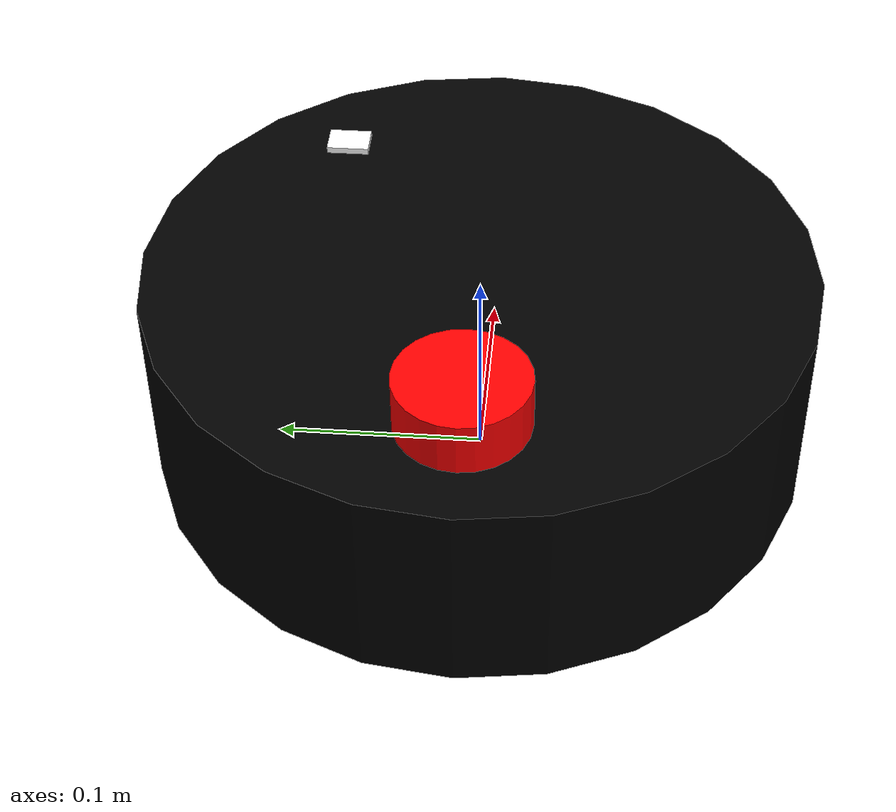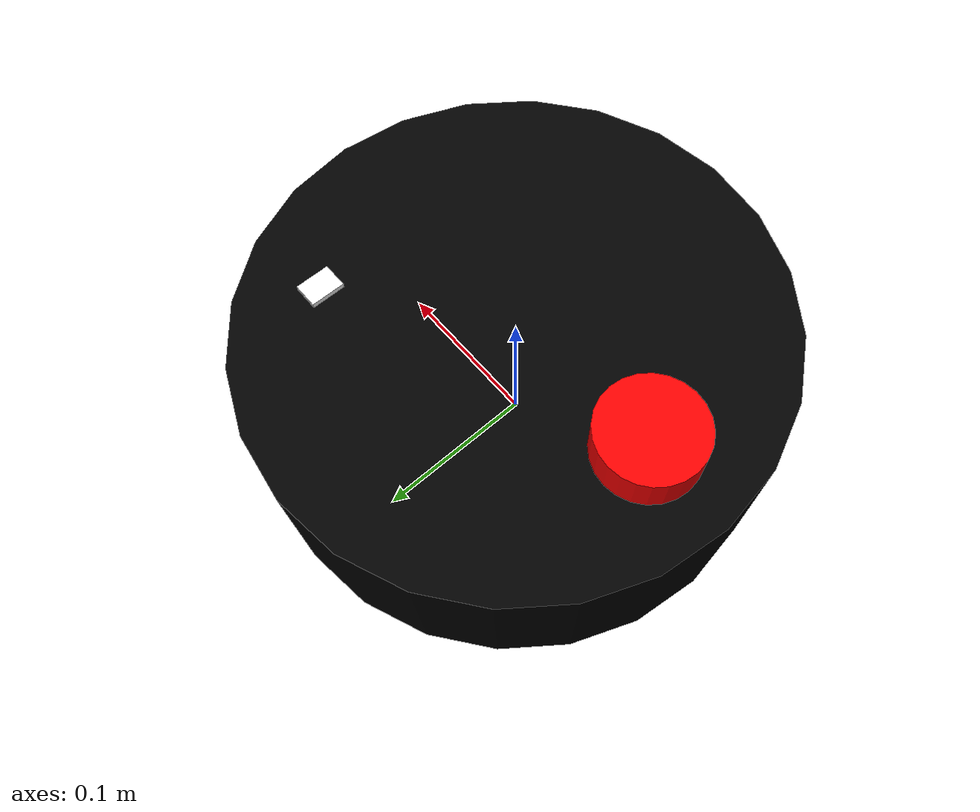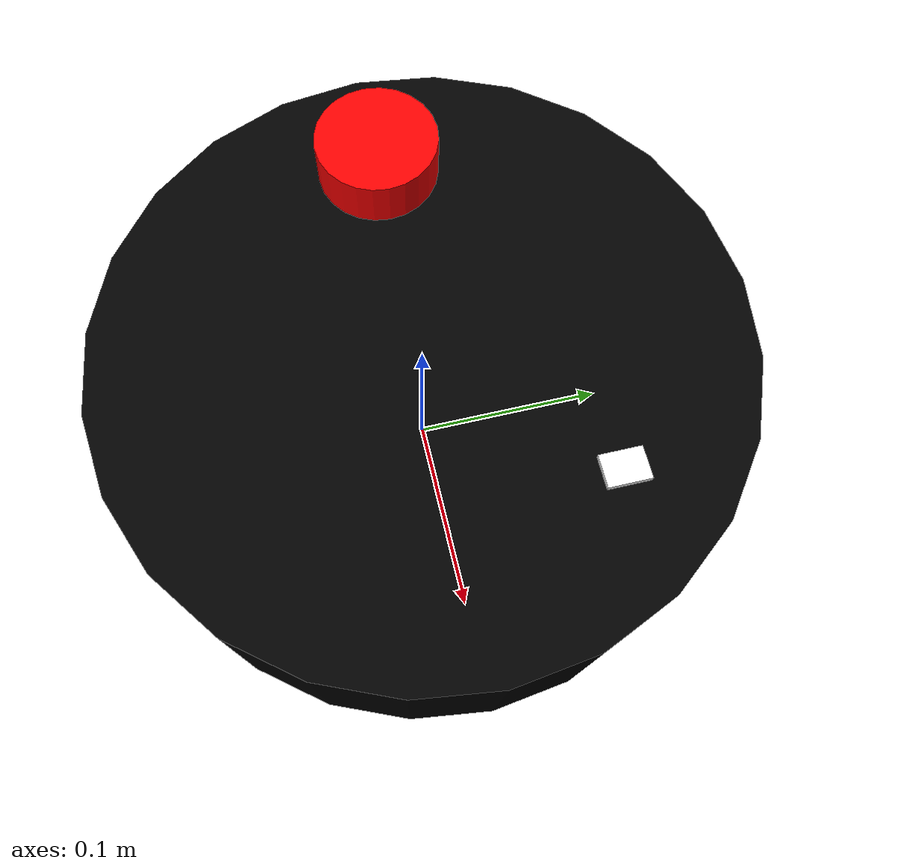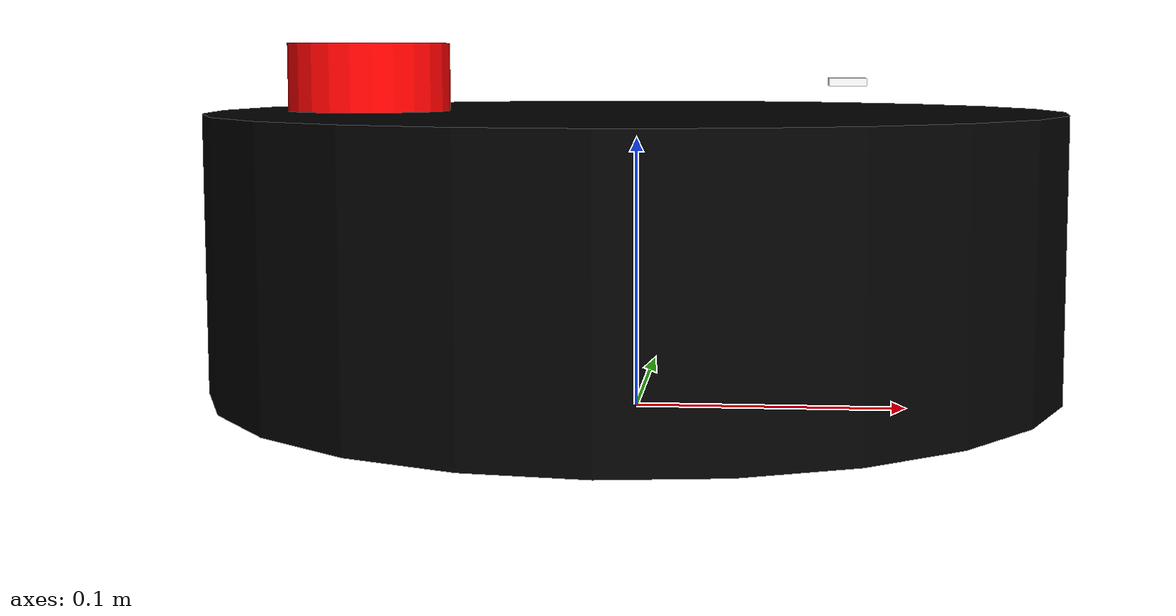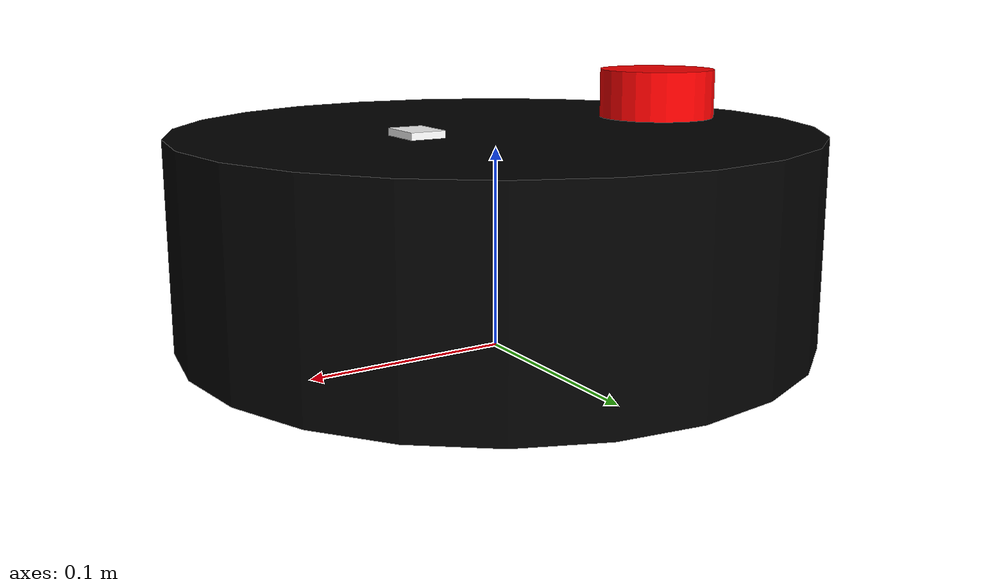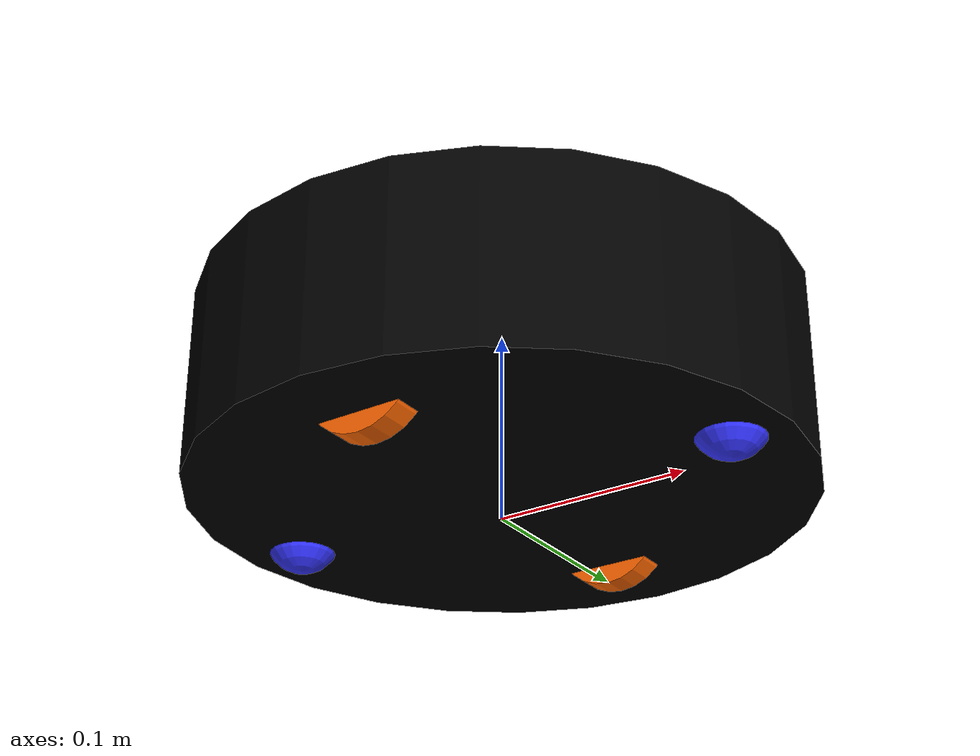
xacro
<?xml version="1.0"?>
<robot xmlns:xacro="http://www.ros.org/wiki/xacro"  name="robot">

    <xacro:arg name="use_ros2_control" default="true"/>
    <xacro:arg name="sim_mode" default="false"/>

    <xacro:include filename="robot_core.xacro" />

    <xacro:if value="$(arg use_ros2_control)">
        <xacro:include filename="ros2_control.xacro" />
    </xacro:if>
    <xacro:unless value="$(arg use_ros2_control)">
        <xacro:include filename="gazebo_control.xacro" />
    </xacro:unless>
    <xacro:include filename="lidar.xacro" />
    <xacro:include filename="imu.xacro" />

</robot>

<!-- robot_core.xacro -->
<robot xmlns:xacro="http://www.ros.org/wiki/xacro" >

    <xacro:include filename="inertial_macros.xacro"/>

    <material name="white">
        <color rgba="1 1 1 1"/>
    </material>

    <material name="orange">
        <color rgba="1 0.4 0.0 1"/>
    </material>

    <material name="black">
        <color rgba="0.0 0.0 0.0 1"/>
    </material>

    <material name="blue">
        <color rgba="0.2 0.2 1 1"/>
    </material>

    <material name="red">
        <color rgba="1 0 0 1"/>
    </material>

    <!-- Base footprint -->

    <link name="base_footprint" />

    <joint name="base_joint" type="fixed">

        <parent link="base_footprint"/>
        <child link="base_link"/>
        <origin xyz="0.0 0.0 0.03"/>

    </joint>

    <!-- Base link is your chassis-->

    <link name="base_link">

        <visual>
            <origin xyz="0.0 0.0 0.03"/>
            <geometry>
                <cylinder radius="0.156" length="0.1"/>
            </geometry>
            <material name="black" />
        </visual>
        <collision>
        <origin xyz="0.0 0.0 0.03"/>
            <geometry>
                <cylinder radius="0.158" length="0.1"/>
            </geometry>
        </collision>
        <xacro:inertial_cylinder mass="0.8" radius="0.156" length="0.1">
            <origin xyz="0.0 0.0 0.03" rpy="0.0 0.0 0.0"/>
        </xacro:inertial_cylinder>

    </link>

    <gazebo reference="base_link">
        <material>Gazebo/Black</material>
    </gazebo>

    <!-- Left whell link-->

    <joint name="left_wheel_joint" type="continuous">
        <parent link="base_link"/>
        <child link="left_wheel"/>
        <origin xyz="0.0 0.108 0.00" rpy="-${pi/2} 0.0 0.0" />
        <axis xyz="0.0 0.0 1"/>
    </joint>

    <link name="left_wheel">
        <visual>
            <geometry>
                <cylinder radius="0.03" length="0.0145"/>
            </geometry>
            <material name="orange" />
        </visual>
        <collision>
            <geometry>
                <cylinder radius="0.03" length="0.0145"/>
            </geometry>
        </collision>
        <xacro:inertial_cylinder mass="0.15" radius="0.03" length="0.0145">
            <origin xyz="0.0 0.0 0.0" rpy="0.0 0.0 0.0"/>
        </xacro:inertial_cylinder>
    </link>

    <gazebo reference="left_wheel">
        <material>Gazebo/Orange</material>
    </gazebo>

    <!-- Right whell link-->

    <joint name="right_wheel_joint" type="continuous">
        <parent link="base_link"/>
        <child link="right_wheel"/>
        <origin xyz="0.0 -0.108 0.00" rpy="${pi/2} 0.0 0.0" />
        <axis xyz="0.0 0.0 -1"/>
    </joint>

    <link name="right_wheel">
        <visual>
            <geometry>
                <cylinder radius="0.03" length="0.0145"/>
            </geometry>
            <material name="orange" />
        </visual>
        <collision>
            <geometry>
                <cylinder radius="0.03" length="0.0145"/>
            </geometry>
        </collision>
        <xacro:inertial_cylinder mass="0.15" radius="0.03" length="0.0145">
            <origin xyz="0.0 0.0 0.0" rpy="0.0 0.0 0.0"/>
        </xacro:inertial_cylinder>
    </link>

    <gazebo reference="right_wheel">
        <material>Gazebo/Orange</material>
    </gazebo>

    <!-- Caster Wheels-->

    <joint name="caster_front_joint" type="fixed">
        <parent link="base_link"/>
        <child link="caster_front_wheel"/>
        <origin xyz="0.125 0.0 -0.01"/>
    </joint>

    <link name="caster_front_wheel">
        <visual>
            <geometry>
                <sphere radius="0.02"/>
            </geometry>
            <material name="blue" />
        </visual>
        <collision>
            <geometry>
                <sphere radius="0.02"/>
            </geometry>
        </collision>
        <xacro:inertial_sphere mass="0.1" radius="0.03" >
            <origin xyz="0.0 0.0 0.0" rpy="0.0 0.0 0.0"/>
        </xacro:inertial_sphere>
    </link>

    <gazebo reference="caster_front_wheel">
        <material>Gazebo/Blue</material>
        <mu1 value="0.001"/>
        <mu2 value="0.001"/>
    </gazebo>

    <joint name="caster_back_joint" type="fixed">
        <parent link="base_link"/>
        <child link="caster_back_wheel"/>
        <origin xyz="-0.125 0.0 -0.01"/>
    </joint>

    <link name="caster_back_wheel">
        <visual>
            <geometry>
                <sphere radius="0.02"/>
            </geometry>
            <material name="blue" />
        </visual>
        <collision>
            <geometry>
                <sphere radius="0.02"/>
            </geometry>
        </collision>
        <xacro:inertial_sphere mass="0.1" radius="0.03" >
            <origin xyz="0.0 0.0 0.0" rpy="0.0 0.0 0.0"/>
        </xacro:inertial_sphere>
    </link>

    <gazebo reference="caster_back_wheel">
        <material>Gazebo/Blue</material>
        <mu1 value="0.001"/>
        <mu2 value="0.001"/>
    </gazebo>

</robot>

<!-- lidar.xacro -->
<robot xmlns:xacro="http://www.ros.org/wiki/xacro" >

    <joint name="laser_joint" type="fixed">
        <parent link="base_link"/>
        <child link="laser_link"/>
        <origin xyz="-0.1 0.0 0.09"/>
    </joint>

    <link name="laser_link">
        <visual>
            <geometry>
                <cylinder radius="0.03" length="0.03"/>
            </geometry>
            <material name="red" />
        </visual>
        <collision>
            <geometry>
                <cylinder radius="0.03" length="0.03"/>
            </geometry>
        </collision>
        <xacro:inertial_cylinder mass="0.2" radius="0.03" length="0.03">
            <origin xyz="0.0 0.0 0.0" rpy="0.0 0.0 0.0"/>
        </xacro:inertial_cylinder>
    </link>

    <gazebo reference="laser_link">
        <material>Gazebo/Red</material>

        <sensor name="laser" type="ray">
            <pose> 0 0 0 0 0 0 </pose>
            <visualize>true</visualize>
            <update_rate>10</update_rate>
            <ray>
                <scan>
                    <horizontal>
                        <samples>360</samples>
                        <min_angle>-3.14</min_angle>
                        <max_angle>3.14</max_angle>
                    </horizontal>
                </scan>
                <range>
                    <min>0.3</min>
                    <max>8</max>
                </range>
            </ray>
            <plugin name="laser_controller" filename="libgazebo_ros_ray_sensor.so">
                <ros>
                    <argument>--ros-args</argument>
                    <argument>-r</argument>
                    <argument>~/out:=scan</argument>
                </ros>
                <output_type>sensor_msgs/LaserScan</output_type>
                <frame_name>laser_link</frame_name>
            </plugin>
        </sensor>
    </gazebo>

</robot>

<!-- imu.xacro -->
<robot xmlns:xacro="http://www.ros.org/wiki/xacro" >

    <joint name="imu_joint" type="fixed">
        <parent link="base_link"/>
        <child link="imu_link"/>
        <origin xyz="0.08 0.07 0.09"/>
    </joint>

    <link name="imu_link">
        <visual>
            <geometry>
                <box size="0.015 0.02 0.003"/>
            </geometry>
            <material name="white" />
        </visual>
        <collision>
            <geometry>
                <box size="0.015 0.02 0.003"/>
            </geometry>
        </collision>
        <xacro:inertial_box mass="0.05" x="0.015" y="0.02" z="0.003">
            <origin xyz="0.0 0.0 0.0" rpy="0.0 0.0 0.0"/>
        </xacro:inertial_box>
    </link>

    <gazebo reference="imu_link">
        <material>Gazebo/White</material>

        <sensor name="imu" type="imu">
            <pose> 0 0 0 0 0 0 </pose>
            <visualize>true</visualize>
            <update_rate>100</update_rate>
            <always_on>true</always_on>
            <plugin filename="libgazebo_ros_imu_sensor.so" name="imu_plugin">
                <ros>
                    <argument>--ros-args</argument>
                    <argument>-r</argument>
                    <argument>~/out:=imu_data</argument>
                </ros>
                <updateRateHZ>10.0</updateRateHZ>
                <gaussianNoise>0.0</gaussianNoise>
                <xyzOffset>0 0 0</xyzOffset>
                <rpyOffset>0 0 0</rpyOffset>
                <frameName>imu_link</frameName>
                <initialOrientationAsReference>false</initialOrientationAsReference>
            </plugin>
        </sensor>
    </gazebo>

</robot>
